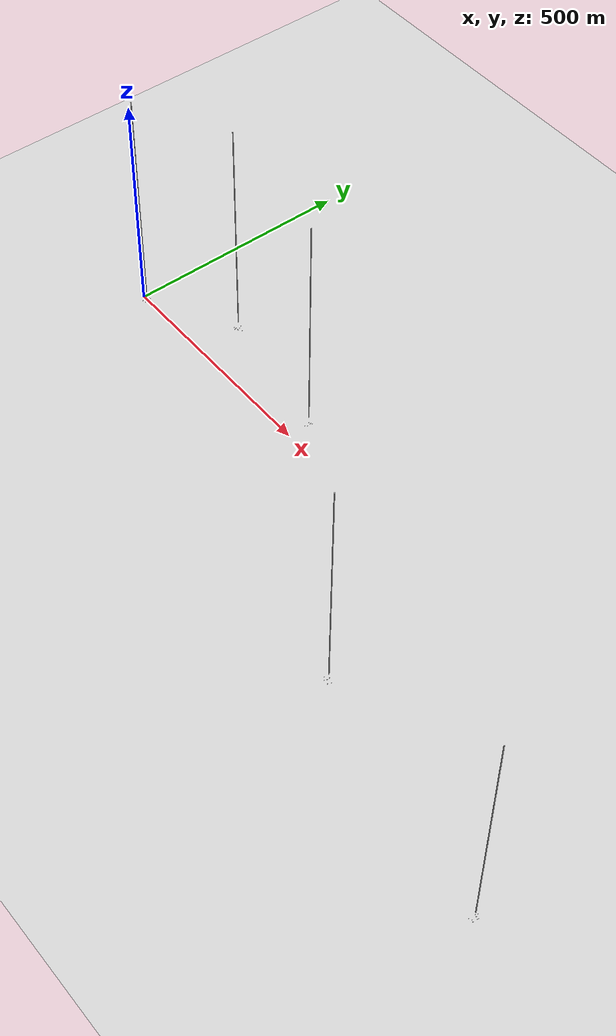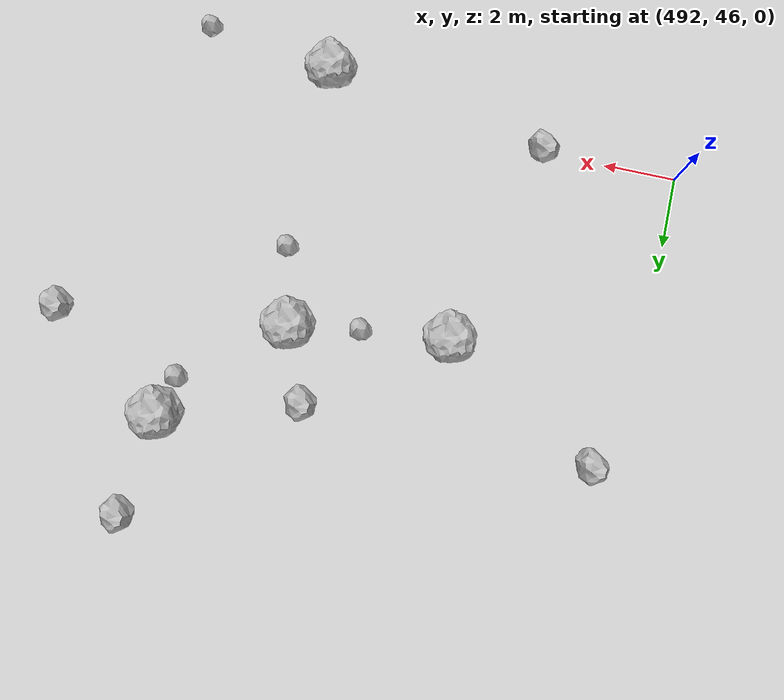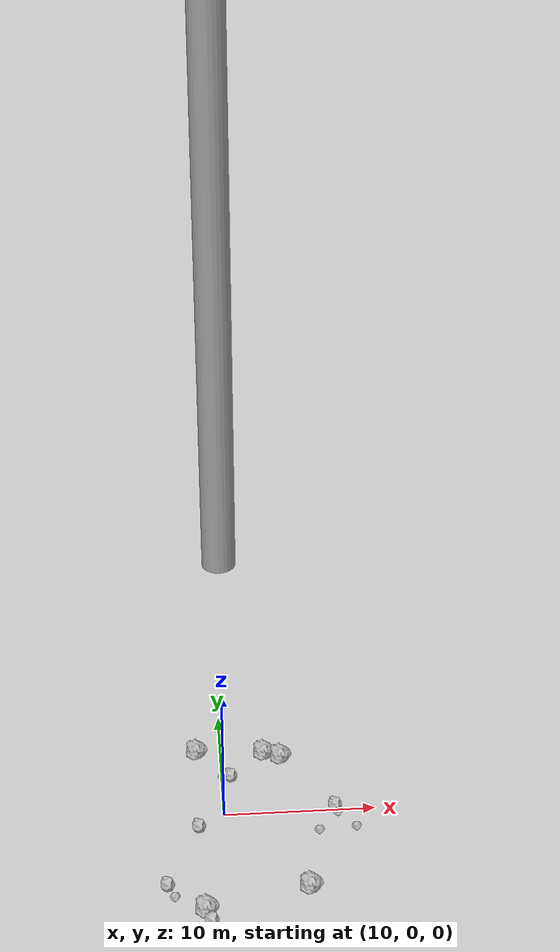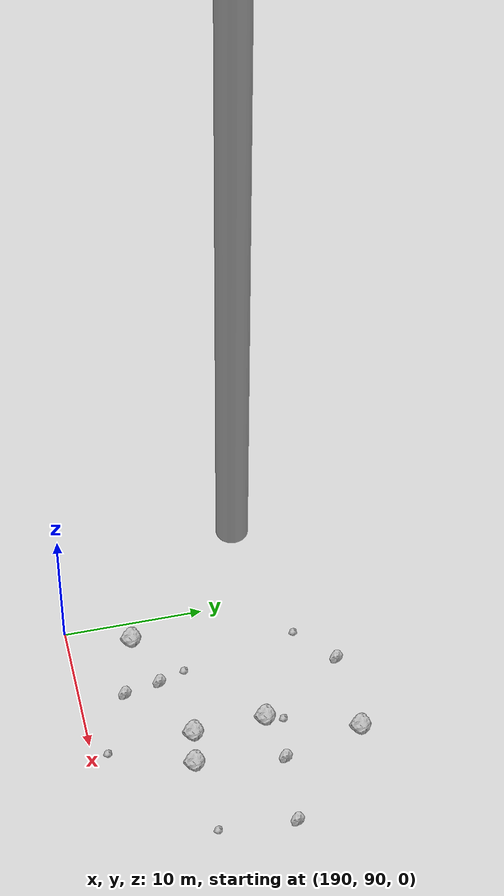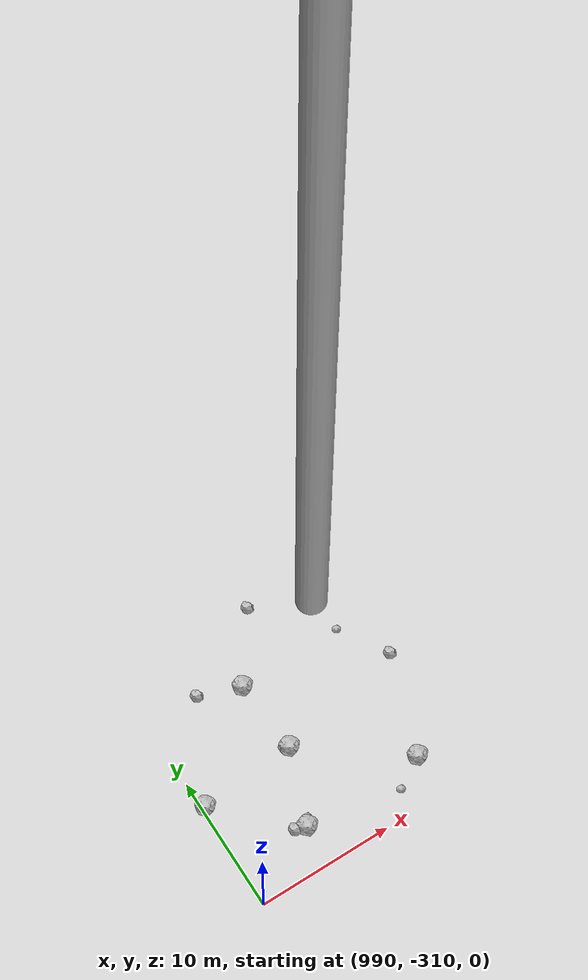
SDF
<?xml version="1.0" ?>
<sdf version="1.6">
  <world name="default">

    <include>
      <uri>model://custom_ground</uri>
    </include>

    <include>
      <uri>model://sun</uri>
    </include>

    <spherical_coordinates>
      <surface_model>EARTH_WGS84</surface_model>
      <latitude_deg>38.161479</latitude_deg>
      <longitude_deg>-122.454630</longitude_deg>
      <elevation>488.0</elevation>
      <heading_deg>90</heading_deg>
    </spherical_coordinates>

    <model name="rock1_0_0">
      <include>
        <uri>model://rock1</uri>
        <pose>12.989605624643811 5.731276305105197 0.5 0 0 0</pose>
      </include>
    </model>
    <model name="rock1_0_1">
      <include>
        <uri>model://rock1</uri>
        <pose>8.365878869337111 6.0875143358953 0.5 0 0 0</pose>
      </include>
    </model>
    <model name="rock1_0_2">
      <include>
        <uri>model://rock1</uri>
        <pose>14.107776871800365 5.2571249877509025 0.5 0 0 0</pose>
      </include>
    </model>
    <model name="rock1_0_3">
      <include>
        <uri>model://rock1</uri>
        <pose>15.176519211921988 -7.1366931685016795 0.5 0 0 0</pose>
      </include>
    </model>
    <model name="rock1_0_4">
      <include>
        <uri>model://rock1</uri>
        <pose>8.590339230120607 -8.670844612815554 0.5 0 0 0</pose>
      </include>
    </model>
    <model name="rock2_0_0">
      <include>
        <uri>model://rock2</uri>
        <pose>8.302995013474025 -1.1522543549567477 0.3 0 0 0</pose>
      </include>
    </model>
    <model name="rock2_0_1">
      <include>
        <uri>model://rock2</uri>
        <pose>6.1786976947747725 -6.317371364069695 0.3 0 0 0</pose>
      </include>
    </model>
    <model name="rock2_0_2">
      <include>
        <uri>model://rock2</uri>
        <pose>8.84435693515744 -9.451424482874389 0.3 0 0 0</pose>
      </include>
    </model>
    <model name="rock2_0_3">
      <include>
        <uri>model://rock2</uri>
        <pose>10.58831568523751 3.665649157297178 0.3 0 0 0</pose>
      </include>
    </model>
    <model name="rock2_0_4">
      <include>
        <uri>model://rock2</uri>
        <pose>17.378874812651798 0.33667573716877897 0.3 0 0 0</pose>
      </include>
    </model>
    <model name="rock3_0_0">
      <include>
        <uri>model://rock3</uri>
        <pose>17.513890208186268 -0.3888359889238675 0.2 0 0 0</pose>
      </include>
    </model>
    <model name="rock3_0_1">
      <include>
        <uri>model://rock3</uri>
        <pose>6.6296698046170714 -7.400840371443158 0.2 0 0 0</pose>
      </include>
    </model>
    <model name="rock3_0_2">
      <include>
        <uri>model://rock3</uri>
        <pose>16.14953047398299 -2.002429151879312 0.2 0 0 0</pose>
      </include>
    </model>
    <model name="rock3_0_3">
      <include>
        <uri>model://rock3</uri>
        <pose>18.60450388274203 -1.831162104763429 0.2 0 0 0</pose>
      </include>
    </model>
    <model name="rock3_0_4">
      <include>
        <uri>model://rock3</uri>
        <pose>10.037183323570693 3.5962054195021036 0.2 0 0 0</pose>
      </include>
    </model>
    <model name="rock1_1_0">
      <include>
        <uri>model://rock1</uri>
        <pose>191.7617826509297 94.51079437751238 0.5 0 0 0</pose>
      </include>
    </model>
    <model name="rock1_1_1">
      <include>
        <uri>model://rock1</uri>
        <pose>200.72620386507 97.16293283865471 0.5 0 0 0</pose>
      </include>
    </model>
    <model name="rock1_1_2">
      <include>
        <uri>model://rock1</uri>
        <pose>200.50044757190653 102.31078449766783 0.5 0 0 0</pose>
      </include>
    </model>
    <model name="rock1_1_3">
      <include>
        <uri>model://rock1</uri>
        <pose>202.68191171950448 108.5712949848822 0.5 0 0 0</pose>
      </include>
    </model>
    <model name="rock1_1_4">
      <include>
        <uri>model://rock1</uri>
        <pose>203.20634053343616 96.72521676715048 0.5 0 0 0</pose>
      </include>
    </model>
    <model name="rock2_1_0">
      <include>
        <uri>model://rock2</uri>
        <pose>196.4018991178828 108.46147180651613 0.3 0 0 0</pose>
      </include>
    </model>
    <model name="rock2_1_1">
      <include>
        <uri>model://rock2</uri>
        <pose>196.296508291424 93.20243933635221 0.3 0 0 0</pose>
      </include>
    </model>
    <model name="rock2_1_2">
      <include>
        <uri>model://rock2</uri>
        <pose>195.801422126457 95.76601405380634 0.3 0 0 0</pose>
      </include>
    </model>
    <model name="rock2_1_3">
      <include>
        <uri>model://rock2</uri>
        <pose>203.97369136514624 102.94980118229608 0.3 0 0 0</pose>
      </include>
    </model>
    <model name="rock2_1_4">
      <include>
        <uri>model://rock2</uri>
        <pose>209.12865499246635 102.52401180848445 0.3 0 0 0</pose>
      </include>
    </model>
    <model name="rock3_1_0">
      <include>
        <uri>model://rock3</uri>
        <pose>201.03244507447332 91.09458814346684 0.2 0 0 0</pose>
      </include>
    </model>
    <model name="rock3_1_1">
      <include>
        <uri>model://rock3</uri>
        <pose>195.16117919272193 97.6508666596605 0.2 0 0 0</pose>
      </include>
    </model>
    <model name="rock3_1_2">
      <include>
        <uri>model://rock3</uri>
        <pose>208.72311714647043 97.15676364046843 0.2 0 0 0</pose>
      </include>
    </model>
    <model name="rock3_1_3">
      <include>
        <uri>model://rock3</uri>
        <pose>200.7163392852122 103.54866975742345 0.2 0 0 0</pose>
      </include>
    </model>
    <model name="rock3_1_4">
      <include>
        <uri>model://rock3</uri>
        <pose>193.43584520561515 106.00061048649309 0.2 0 0 0</pose>
      </include>
    </model>
    <model name="rock1_2_0">
      <include>
        <uri>model://rock1</uri>
        <pose>502.16976194010687 44.9400772370449 0.5 0 0 0</pose>
      </include>
    </model>
    <model name="rock1_2_1">
      <include>
        <uri>model://rock1</uri>
        <pose>504.50558101148135 55.46947702696628 0.5 0 0 0</pose>
      </include>
    </model>
    <model name="rock1_2_2">
      <include>
        <uri>model://rock1</uri>
        <pose>497.29231744596683 51.832853276956044 0.5 0 0 0</pose>
      </include>
    </model>
    <model name="rock1_2_3">
      <include>
        <uri>model://rock1</uri>
        <pose>501.63059225687743 52.405172560017874 0.5 0 0 0</pose>
      </include>
    </model>
    <model name="rock1_2_4">
      <include>
        <uri>model://rock1</uri>
        <pose>499.18992286816786 40.65082237246741 0.5 0 0 0</pose>
      </include>
    </model>
    <model name="rock2_2_0">
      <include>
        <uri>model://rock2</uri>
        <pose>507.9286665177149 53.19344559242328 0.3 0 0 0</pose>
      </include>
    </model>
    <model name="rock2_2_1">
      <include>
        <uri>model://rock2</uri>
        <pose>504.8268931335702 58.2260940582654 0.3 0 0 0</pose>
      </include>
    </model>
    <model name="rock2_2_2">
      <include>
        <uri>model://rock2</uri>
        <pose>500.8222252714199 54.40507031454829 0.3 0 0 0</pose>
      </include>
    </model>
    <model name="rock2_2_3">
      <include>
        <uri>model://rock2</uri>
        <pose>492.9276894662985 54.38860367316303 0.3 0 0 0</pose>
      </include>
    </model>
    <model name="rock2_2_4">
      <include>
        <uri>model://rock2</uri>
        <pose>495.8128457744845 45.93665044564958 0.3 0 0 0</pose>
      </include>
    </model>
    <model name="rock3_2_0">
      <include>
        <uri>model://rock3</uri>
        <pose>497.51148537369215 51.78865566393789 0.2 0 0 0</pose>
      </include>
    </model>
    <model name="rock3_2_1">
      <include>
        <uri>model://rock3</uri>
        <pose>505.83565668383307 44.283388830183256 0.2 0 0 0</pose>
      </include>
    </model>
    <model name="rock3_2_2">
      <include>
        <uri>model://rock3</uri>
        <pose>502.1591597565613 50.2142819735475 0.2 0 0 0</pose>
      </include>
    </model>
    <model name="rock3_2_3">
      <include>
        <uri>model://rock3</uri>
        <pose>504.24243881818904 54.377409688895256 0.2 0 0 0</pose>
      </include>
    </model>
    <model name="rock3_2_4">
      <include>
        <uri>model://rock3</uri>
        <pose>499.66881179638585 52.07239409288341 0.2 0 0 0</pose>
      </include>
    </model>
    <model name="rock1_3_0">
      <include>
        <uri>model://rock1</uri>
        <pose>990.2937015394685 -302.07650419478665 0.5 0 0 0</pose>
      </include>
    </model>
    <model name="rock1_3_1">
      <include>
        <uri>model://rock1</uri>
        <pose>997.1162179553334 -295.98700423197437 0.5 0 0 0</pose>
      </include>
    </model>
    <model name="rock1_3_2">
      <include>
        <uri>model://rock1</uri>
        <pose>997.4836722706347 -301.5177371745021 0.5 0 0 0</pose>
      </include>
    </model>
    <model name="rock1_3_3">
      <include>
        <uri>model://rock1</uri>
        <pose>995.43647606937 -307.00992798130443 0.5 0 0 0</pose>
      </include>
    </model>
    <model name="rock1_3_4">
      <include>
        <uri>model://rock1</uri>
        <pose>1004.608392387654 -306.8405724892061 0.5 0 0 0</pose>
      </include>
    </model>
    <model name="rock2_3_0">
      <include>
        <uri>model://rock2</uri>
        <pose>1007.2162335415825 -299.38753704575277 0.3 0 0 0</pose>
      </include>
    </model>
    <model name="rock2_3_1">
      <include>
        <uri>model://rock2</uri>
        <pose>993.989425959397 -294.83982089971846 0.3 0 0 0</pose>
      </include>
    </model>
    <model name="rock2_3_2">
      <include>
        <uri>model://rock2</uri>
        <pose>1000.5443908924166 -291.05439978980735 0.3 0 0 0</pose>
      </include>
    </model>
    <model name="rock2_3_3">
      <include>
        <uri>model://rock2</uri>
        <pose>997.1543718181497 -301.3470551478401 0.3 0 0 0</pose>
      </include>
    </model>
    <model name="rock2_3_4">
      <include>
        <uri>model://rock2</uri>
        <pose>994.5616534053186 -306.73393923818327 0.3 0 0 0</pose>
      </include>
    </model>
    <model name="rock3_3_0">
      <include>
        <uri>model://rock3</uri>
        <pose>997.0705485298901 -301.3517657968683 0.2 0 0 0</pose>
      </include>
    </model>
    <model name="rock3_3_1">
      <include>
        <uri>model://rock3</uri>
        <pose>1004.2627044336263 -292.6578790717445 0.2 0 0 0</pose>
      </include>
    </model>
    <model name="rock3_3_2">
      <include>
        <uri>model://rock3</uri>
        <pose>995.7516885950962 -306.44713997279007 0.2 0 0 0</pose>
      </include>
    </model>
    <model name="rock3_3_3">
      <include>
        <uri>model://rock3</uri>
        <pose>1002.288269082055 -308.2381338174936 0.2 0 0 0</pose>
      </include>
    </model>
    <model name="rock3_3_4">
      <include>
        <uri>model://rock3</uri>
        <pose>1005.0206735731448 -295.8560776827356 0.2 0 0 0</pose>
      </include>
    </model>
    <model name="rock1_4_0">
      <include>
        <uri>model://rock1</uri>
        <pose>1503.4088347280274 -407.08246003985647 0.5 0 0 0</pose>
      </include>
    </model>
    <model name="rock1_4_1">
      <include>
        <uri>model://rock1</uri>
        <pose>1499.679603203483 -406.1663261265447 0.5 0 0 0</pose>
      </include>
    </model>
    <model name="rock1_4_2">
      <include>
        <uri>model://rock1</uri>
        <pose>1504.8395710611587 -395.86515716840637 0.5 0 0 0</pose>
      </include>
    </model>
    <model name="rock1_4_3">
      <include>
        <uri>model://rock1</uri>
        <pose>1504.4575190654423 -399.0987028218919 0.5 0 0 0</pose>
      </include>
    </model>
    <model name="rock1_4_4">
      <include>
        <uri>model://rock1</uri>
        <pose>1500.0865792965892 -396.8715164760651 0.5 0 0 0</pose>
      </include>
    </model>
    <model name="rock2_4_0">
      <include>
        <uri>model://rock2</uri>
        <pose>1495.940165417127 -395.08067977450696 0.3 0 0 0</pose>
      </include>
    </model>
    <model name="rock2_4_1">
      <include>
        <uri>model://rock2</uri>
        <pose>1499.5073771245393 -396.18329531421034 0.3 0 0 0</pose>
      </include>
    </model>
    <model name="rock2_4_2">
      <include>
        <uri>model://rock2</uri>
        <pose>1497.6686795289697 -391.0187401760522 0.3 0 0 0</pose>
      </include>
    </model>
    <model name="rock2_4_3">
      <include>
        <uri>model://rock2</uri>
        <pose>1503.4300211278241 -406.5971904912068 0.3 0 0 0</pose>
      </include>
    </model>
    <model name="rock2_4_4">
      <include>
        <uri>model://rock2</uri>
        <pose>1506.1578493857805 -400.91029758131504 0.3 0 0 0</pose>
      </include>
    </model>
    <model name="rock3_4_0">
      <include>
        <uri>model://rock3</uri>
        <pose>1506.467830629885 -400.1431912578151 0.2 0 0 0</pose>
      </include>
    </model>
    <model name="rock3_4_1">
      <include>
        <uri>model://rock3</uri>
        <pose>1496.8932886603895 -391.4119198068122 0.2 0 0 0</pose>
      </include>
    </model>
    <model name="rock3_4_2">
      <include>
        <uri>model://rock3</uri>
        <pose>1494.0634014391708 -405.5975202508806 0.2 0 0 0</pose>
      </include>
    </model>
    <model name="rock3_4_3">
      <include>
        <uri>model://rock3</uri>
        <pose>1496.7274869074743 -409.354827342606 0.2 0 0 0</pose>
      </include>
    </model>
    <model name="rock3_4_4">
      <include>
        <uri>model://rock3</uri>
        <pose>1495.0668851369376 -408.5521985587373 0.2 0 0 0</pose>
      </include>
    </model>

    <model name="cylinder_1">
      <static>true</static>
      <link name="link">
        <visual name="visual">
          <geometry>
            <cylinder>
              <radius>1</radius>
              <length>500</length>
            </cylinder>
          </geometry>
        </visual>
      </link>
      <pose>10 0 270 0 0 0</pose>
    </model>

    <model name="cylinder_2">
      <static>true</static>
      <link name="link">
        <visual name="visual">
          <geometry>
            <cylinder>
              <radius>1</radius>
              <length>500</length>
            </cylinder>
          </geometry>
        </visual>
      </link>
      <pose>200 100 270 0 0 0</pose>
    </model>

    <model name="cylinder_3">
      <static>true</static>
      <link name="link">
        <visual name="visual">
          <geometry>
            <cylinder>
              <radius>1</radius>
              <length>500</length>
            </cylinder>
          </geometry>
        </visual>
      </link>
      <pose>500 50 270 0 0 0</pose>
    </model>

    <model name="cylinder_4">
      <static>true</static>
      <link name="link">
        <visual name="visual">
          <geometry>
            <cylinder>
              <radius>1</radius>
              <length>500</length>
            </cylinder>
          </geometry>
        </visual>
      </link>
      <pose>1000 -300 270 0 0 0</pose>
    </model>

    <model name="cylinder_5">
      <static>true</static>
      <link name="link">
        <visual name="visual">
          <geometry>
            <cylinder>
              <radius>1</radius>
              <length>500</length>
            </cylinder>
          </geometry>
        </visual>
      </link>
      <pose>1500 -400 270 0 0 0</pose>
    </model>

  </world>
</sdf>

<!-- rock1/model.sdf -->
<sdf version="1.6">
  <model name="rock1">
    <static>true</static> <!-- Set to true if the model should not move -->
    <pose>0 0 0 0 0 0</pose>

    <!--z offset is 0.5 for full scale-->

    <link name="link">
      <collision name="rock1_collision">
        <geometry>
          <mesh>
            <uri>model://meshes/rock1.dae</uri>
          </mesh>
        </geometry>
      </collision>
      <visual name="rock1_visual">
        <geometry>
          <mesh>
            <uri>model://meshes/rock1.dae</uri>
          </mesh>
        </geometry>
        <material>
          <script>
            <uri>model://materials/scripts/sand_pebbles.material</uri>
            <name>custom_ground/Image</name>
          </script>
        </material>
      </visual>
    </link>
  </model>
</sdf>

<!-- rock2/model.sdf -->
<sdf version="1.6">
  <model name="rock2">
    <static>true</static> <!-- Set to true if the model should not move -->
    <pose>0 0 0 0 0 0</pose>

    <!--z offset is 0.3 for full scale-->

    <link name="link">
      <collision name="rock2_collision">
        <geometry>
          <mesh>
            <uri>model://meshes/rock2.dae</uri>
          </mesh>
        </geometry>
      </collision>
      <visual name="rock2_visual">
        <geometry>
          <mesh>
            <uri>model://meshes/rock2.dae</uri>
          </mesh>
        </geometry>
        <material>
          <script>
            <uri>model://materials/scripts/sand_pebbles.material</uri>
            <name>custom_ground/Image</name>
          </script>
        </material>
      </visual>
    </link>
  </model>
</sdf>

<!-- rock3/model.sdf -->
<sdf version="1.6">
  <model name="rock3">
    <static>true</static> <!-- Set to true if the model should not move -->
    <pose>0 0 0 0 0 0</pose>

    <!--z offset is 0.2 for full scale-->

    <link name="link">
      <collision name="rock3_collision">
        <geometry>
          <mesh>
            <uri>model://meshes/rock3.dae</uri>
          </mesh>
        </geometry>
      </collision>
      <visual name="rock3_visual">
        <geometry>
          <mesh>
            <uri>model://meshes/rock3.dae</uri>
          </mesh>
        </geometry>
        <material>
          <script>
            <uri>model://materials/scripts/sand_pebbles.material</uri>
            <name>custom_ground/Image</name>
          </script>
        </material>
      </visual>
    </link>
  </model>
</sdf>

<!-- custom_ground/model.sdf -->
<sdf version="1.6">
  <model name="custom_ground">
    <static>true</static> <!-- Ground is static and immovable -->
    <link name="ground_link">
      <pose>240 0 0 0 0 0</pose> <!-- Position and orientation relative to the world -->
      <!-- Visual Representation -->
      <visual name="ground_visual">
        <geometry>
          <plane>
            <normal>0 0 1</normal> <!-- Upward facing plane -->
            <size>500 500</size> <!-- Size of the plane -->
          </plane>
        </geometry>
        <material>
          <script>
            <uri>model://materials/scripts/sand_pebbles.material</uri>
            <name>custom_ground/Image</name>
          </script>
        </material>
      </visual>

      <!-- Collision Representation -->
      <collision name="ground_collision">
        <geometry>
          <plane>
            <normal>0 0 1</normal>
            <size>100 100</size>
          </plane>
        </geometry>
      </collision>

    </link>
  </model>
</sdf>
